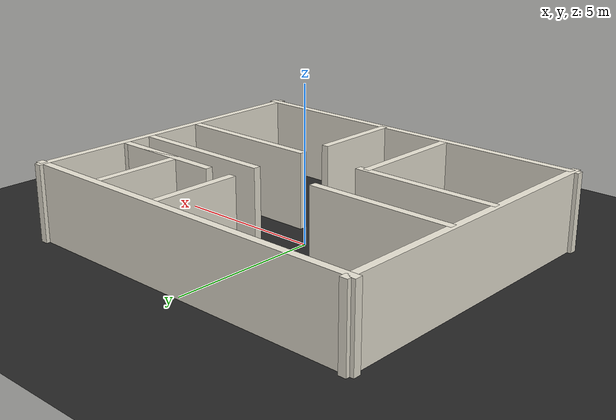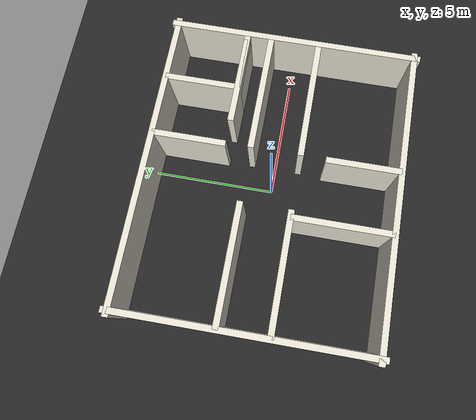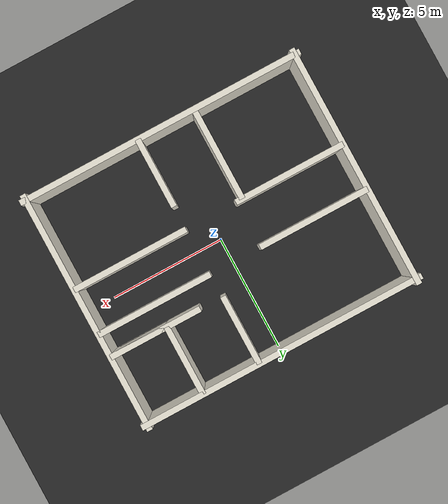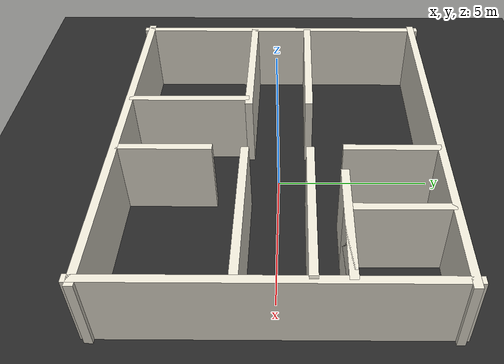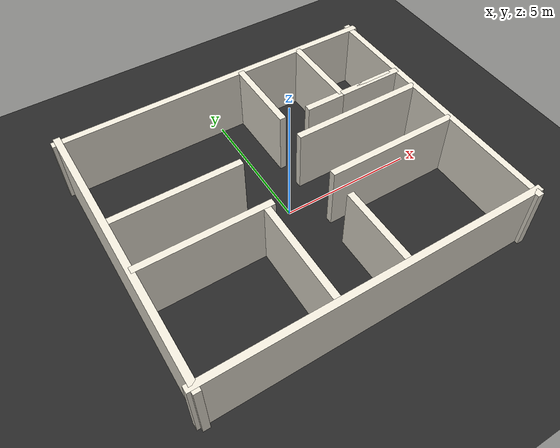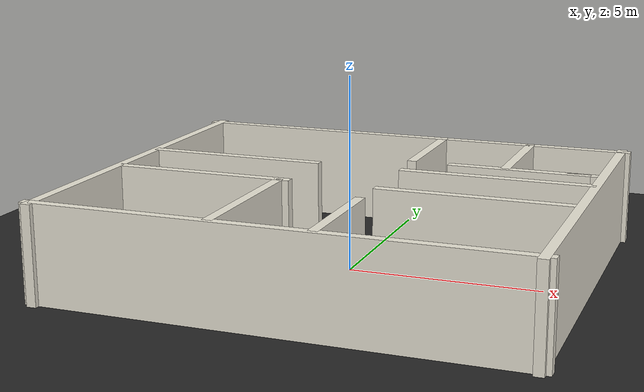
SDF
<?xml version="1.0" ?>
<sdf version="1.6">
  <world name="apartment">

    <light name="sun" type="directional">
      <cast_shadows>false</cast_shadows>
      <pose>0 0 10 0 -0 0</pose>
      <diffuse>0.9 0.9 0.9 1</diffuse>
      <specular>0.3 0.3 0.3 1</specular>
      <attenuation>
        <range>1000</range><constant>0.9</constant>
        <linear>0.01</linear><quadratic>0.001</quadratic>
      </attenuation>
      <direction>-0.5 0.1 -0.9</direction>
    </light>

    <model name="ground_plane">
      <static>true</static>
      <link name="link">
        <collision name="collision">
          <geometry><plane><normal>0 0 1</normal><size>100 100</size></plane></geometry>
        </collision>
        <visual name="visual">
          <geometry><plane><normal>0 0 1</normal><size>100 100</size></plane></geometry>
          <material>
            <ambient>0.15 0.15 0.15 1</ambient>
            <diffuse>0.15 0.15 0.15 1</diffuse>
            <specular>0.1 0.1 0.1 1</specular>
          </material>
        </visual>
      </link>
    </model>

    <physics type="ode">
      <max_step_size>0.002</max_step_size>
      <real_time_factor>1</real_time_factor>
      <real_time_update_rate>250</real_time_update_rate>
    </physics>

    <scene>
      <shadows>false</shadows>
      <ambient>0.4 0.4 0.4 1</ambient>
      <background>0.05 0.05 0.05 1</background>
    </scene>

    <model name="south">
      <static>true</static>
      <pose>0.0 -5.0 1.250 0 0 0.000000</pose>
      <link name="link">
        <collision name="col">
          <geometry><box><size>12.5 0.25 2.5</size></box></geometry>
        </collision>
        <visual name="vis">
          <geometry><box><size>12.5 0.25 2.5</size></box></geometry>
          <material>
            <ambient>0.92 0.90 0.84 1</ambient>
            <diffuse>0.92 0.90 0.84 1</diffuse>
          </material>
        </visual>
      </link>
    </model>

    <model name="north">
      <static>true</static>
      <pose>0.0 5.0 1.250 0 0 0.000000</pose>
      <link name="link">
        <collision name="col">
          <geometry><box><size>12.5 0.25 2.5</size></box></geometry>
        </collision>
        <visual name="vis">
          <geometry><box><size>12.5 0.25 2.5</size></box></geometry>
          <material>
            <ambient>0.92 0.90 0.84 1</ambient>
            <diffuse>0.92 0.90 0.84 1</diffuse>
          </material>
        </visual>
      </link>
    </model>

    <model name="west">
      <static>true</static>
      <pose>-6.0 0.0 1.250 0 0 1.570796</pose>
      <link name="link">
        <collision name="col">
          <geometry><box><size>10.5 0.25 2.5</size></box></geometry>
        </collision>
        <visual name="vis">
          <geometry><box><size>10.5 0.25 2.5</size></box></geometry>
          <material>
            <ambient>0.92 0.90 0.84 1</ambient>
            <diffuse>0.92 0.90 0.84 1</diffuse>
          </material>
        </visual>
      </link>
    </model>

    <model name="east">
      <static>true</static>
      <pose>6.0 0.0 1.250 0 0 1.570796</pose>
      <link name="link">
        <collision name="col">
          <geometry><box><size>10.5 0.25 2.5</size></box></geometry>
        </collision>
        <visual name="vis">
          <geometry><box><size>10.5 0.25 2.5</size></box></geometry>
          <material>
            <ambient>0.92 0.90 0.84 1</ambient>
            <diffuse>0.92 0.90 0.84 1</diffuse>
          </material>
        </visual>
      </link>
    </model>

    <model name="hall_n_w">
      <static>true</static>
      <pose>-3.6 1.0 1.250 0 0 0.000000</pose>
      <link name="link">
        <collision name="col">
          <geometry><box><size>4.8 0.25 2.5</size></box></geometry>
        </collision>
        <visual name="vis">
          <geometry><box><size>4.8 0.25 2.5</size></box></geometry>
          <material>
            <ambient>0.92 0.90 0.84 1</ambient>
            <diffuse>0.92 0.90 0.84 1</diffuse>
          </material>
        </visual>
      </link>
    </model>

    <model name="hall_n_e">
      <static>true</static>
      <pose>3.5 1.0 1.250 0 0 0.000000</pose>
      <link name="link">
        <collision name="col">
          <geometry><box><size>5.0 0.25 2.5</size></box></geometry>
        </collision>
        <visual name="vis">
          <geometry><box><size>5.0 0.25 2.5</size></box></geometry>
          <material>
            <ambient>0.92 0.90 0.84 1</ambient>
            <diffuse>0.92 0.90 0.84 1</diffuse>
          </material>
        </visual>
      </link>
    </model>

    <model name="hall_s_w">
      <static>true</static>
      <pose>-3.6 -1.0 1.250 0 0 0.000000</pose>
      <link name="link">
        <collision name="col">
          <geometry><box><size>4.8 0.25 2.5</size></box></geometry>
        </collision>
        <visual name="vis">
          <geometry><box><size>4.8 0.25 2.5</size></box></geometry>
          <material>
            <ambient>0.92 0.90 0.84 1</ambient>
            <diffuse>0.92 0.90 0.84 1</diffuse>
          </material>
        </visual>
      </link>
    </model>

    <model name="hall_s_e">
      <static>true</static>
      <pose>3.5 -1.0 1.250 0 0 0.000000</pose>
      <link name="link">
        <collision name="col">
          <geometry><box><size>5.0 0.25 2.5</size></box></geometry>
        </collision>
        <visual name="vis">
          <geometry><box><size>5.0 0.25 2.5</size></box></geometry>
          <material>
            <ambient>0.92 0.90 0.84 1</ambient>
            <diffuse>0.92 0.90 0.84 1</diffuse>
          </material>
        </visual>
      </link>
    </model>

    <model name="vdiv_up">
      <static>true</static>
      <pose>1.0 3.5 1.250 0 0 1.570796</pose>
      <link name="link">
        <collision name="col">
          <geometry><box><size>3.0 0.25 2.5</size></box></geometry>
        </collision>
        <visual name="vis">
          <geometry><box><size>3.0 0.25 2.5</size></box></geometry>
          <material>
            <ambient>0.92 0.90 0.84 1</ambient>
            <diffuse>0.92 0.90 0.84 1</diffuse>
          </material>
        </visual>
      </link>
    </model>

    <model name="vdiv_lo">
      <static>true</static>
      <pose>1.0 -3.5 1.250 0 0 1.570796</pose>
      <link name="link">
        <collision name="col">
          <geometry><box><size>3.0 0.25 2.5</size></box></geometry>
        </collision>
        <visual name="vis">
          <geometry><box><size>3.0 0.25 2.5</size></box></geometry>
          <material>
            <ambient>0.92 0.90 0.84 1</ambient>
            <diffuse>0.92 0.90 0.84 1</diffuse>
          </material>
        </visual>
      </link>
    </model>

    <model name="b1b2_div">
      <static>true</static>
      <pose>3.85 2.0 1.250 0 0 0.000000</pose>
      <link name="link">
        <collision name="col">
          <geometry><box><size>3.7 0.25 2.5</size></box></geometry>
        </collision>
        <visual name="vis">
          <geometry><box><size>3.7 0.25 2.5</size></box></geometry>
          <material>
            <ambient>0.92 0.90 0.84 1</ambient>
            <diffuse>0.92 0.90 0.84 1</diffuse>
          </material>
        </visual>
      </link>
    </model>

    <model name="bath_v">
      <static>true</static>
      <pose>3.5 3.5 1.250 0 0 1.570796</pose>
      <link name="link">
        <collision name="col">
          <geometry><box><size>3.0 0.25 2.5</size></box></geometry>
        </collision>
        <visual name="vis">
          <geometry><box><size>3.0 0.25 2.5</size></box></geometry>
          <material>
            <ambient>0.92 0.90 0.84 1</ambient>
            <diffuse>0.92 0.90 0.84 1</diffuse>
          </material>
        </visual>
      </link>
    </model>

    <model name="bath_h">
      <static>true</static>
      <pose>4.75 2.0 1.250 0 0 0.000000</pose>
      <link name="link">
        <collision name="col">
          <geometry><box><size>2.5 0.25 2.5</size></box></geometry>
        </collision>
        <visual name="vis">
          <geometry><box><size>2.5 0.25 2.5</size></box></geometry>
          <material>
            <ambient>0.92 0.90 0.84 1</ambient>
            <diffuse>0.92 0.90 0.84 1</diffuse>
          </material>
        </visual>
      </link>
    </model>

    <model name="kt_liv_v1">
      <static>true</static>
      <pose>-1.5 -3.0 1.250 0 0 1.570796</pose>
      <link name="link">
        <collision name="col">
          <geometry><box><size>4.0 0.25 2.5</size></box></geometry>
        </collision>
        <visual name="vis">
          <geometry><box><size>4.0 0.25 2.5</size></box></geometry>
          <material>
            <ambient>0.92 0.90 0.84 1</ambient>
            <diffuse>0.92 0.90 0.84 1</diffuse>
          </material>
        </visual>
      </link>
    </model>

  </world>
</sdf>
